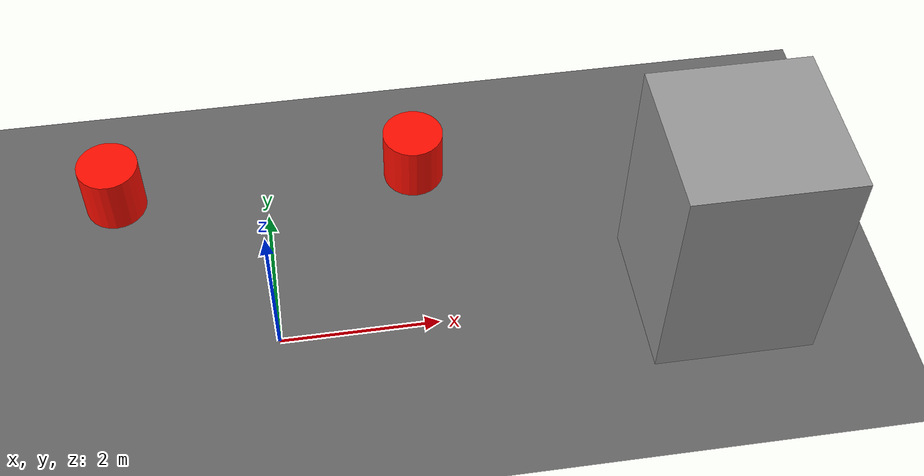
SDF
<?xml version="1.0" ?>
<sdf version="1.7">
  <world name="fire_world">

    <physics name="default_physics" default="true" type="ode">
      <max_step_size>0.001</max_step_size>
      <real_time_factor>1</real_time_factor>
    </physics>

    <light name="sun" type="directional">
      <cast_shadows>true</cast_shadows>
      <pose>0 0 10 0 0 0</pose>
      <diffuse>0.9 0.9 0.9 1</diffuse>
      <specular>0.2 0.2 0.2 1</specular>
      <direction>-0.5 0.1 -0.9</direction>
    </light>

    <model name="ground_plane">
      <static>true</static>
      <link name="link">
        <visual name="visual">
          <geometry><plane><normal>0 0 1</normal><size>100 100</size></plane></geometry>
          <material>
            <ambient>0.4 0.4 0.4 1</ambient>
            <diffuse>0.4 0.4 0.4 1</diffuse>
          </material>
        </visual>
        <collision name="collision">
          <geometry><plane><normal>0 0 1</normal><size>100 100</size></plane></geometry>
        </collision>
      </link>
    </model>

    <!-- Fire source 1 — bright orange-red so HSV thresholds trigger -->
    <model name="fire1">
      <static>true</static>
      <pose>2 2.5 0.4 0 0 0</pose>
      <link name="link">
        <visual name="visual">
          <geometry><cylinder><radius>0.4</radius><length>0.8</length></cylinder></geometry>
          <material>
            <ambient>1 0.15 0 1</ambient>
            <diffuse>1 0.05 0 1</diffuse>
            <emissive>0.9 0.1 0 1</emissive>
            <specular>0 0 0 0</specular>
          </material>
        </visual>
      </link>
    </model>

    <!-- Fire source 2 -->
    <model name="fire2">
      <static>true</static>
      <pose>-2 2.5 0.4 0 0 0</pose>
      <link name="link">
        <visual name="visual">
          <geometry><cylinder><radius>0.4</radius><length>0.8</length></cylinder></geometry>
          <material>
            <ambient>1 0.15 0 1</ambient>
            <diffuse>1 0.05 0 1</diffuse>
            <emissive>0.9 0.1 0 1</emissive>
            <specular>0 0 0 0</specular>
          </material>
        </visual>
      </link>
    </model>

    <!-- Building sits outside the drone search corridor (x>4.5) so path never intersects it -->
    <model name="building1">
      <static>true</static>
      <pose>5.5 0 1.5 0 0 0</pose>
      <link name="link">
        <visual name="visual">
          <geometry><box><size>2 2 3</size></box></geometry>
          <material><ambient>0.6 0.6 0.6 1</ambient><diffuse>0.6 0.6 0.6 1</diffuse></material>
        </visual>
        <collision name="collision">
          <geometry><box><size>2 2 3</size></box></geometry>
        </collision>
      </link>
    </model>

  </world>
</sdf>
